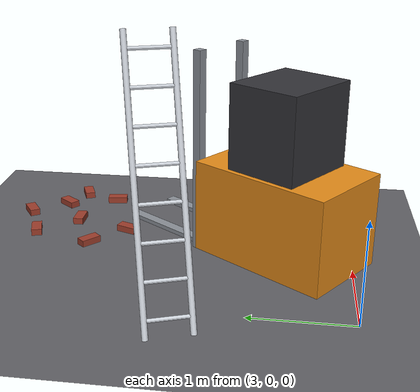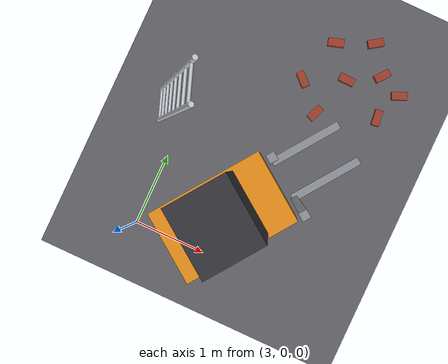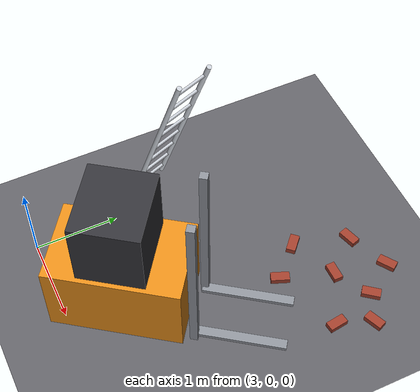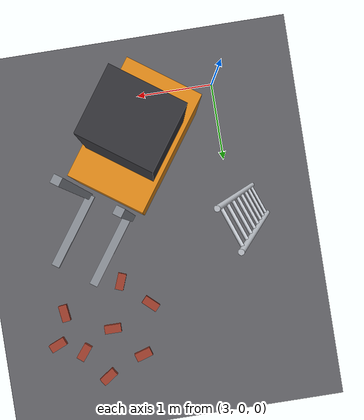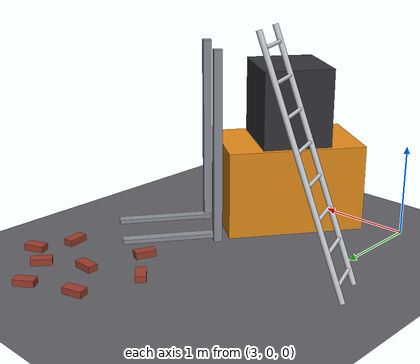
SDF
<sdf version="1.6">
 <world name="construction_lab_A">
  <model name="ground">
   <static>1</static>
   <link name="ground_link">
    <collision name="ground_col">
     <geometry><plane><normal>0 0 1</normal><size>60 60</size></plane></geometry>
     <surface><friction><ode><mu>0.9</mu><mu2>0.9</mu2></ode></friction></surface>
    </collision>
    <visual name="ground_vis">
     <geometry><plane><normal>0 0 1</normal><size>60 60</size></plane></geometry>
     <material><ambient>0.30 0.30 0.32 1</ambient><diffuse>0.38 0.38 0.40 1</diffuse></material>
    </visual>
   </link>
  </model>
  <model name="hazard_A1">
   <static>1</static>
   <link name="hA1_ladder_leaning_rail0">
    <pose>3.07926 1.55139 1.22558 0 0.34 0.35</pose>
    <gravity>0</gravity>
    <collision name="hA1_ladder_leaning_rail0_col">
     <geometry><cylinder><radius>0.028</radius><length>2.6</length></cylinder></geometry>
    </collision>
    <visual name="hA1_ladder_leaning_rail0_vis">
     <geometry><cylinder><radius>0.028</radius><length>2.6</length></cylinder></geometry>
     <material>
      <ambient>0.8 0.82 0.85 1</ambient>
      <diffuse>0.8 0.82 0.85 1</diffuse>
      <specular>0.1 0.1 0.1 1</specular>
     </material>
    </visual>
   </link>
   <link name="hA1_ladder_leaning_rail1">
    <pose>2.93524 1.94593 1.22558 0 0.34 0.35</pose>
    <gravity>0</gravity>
    <collision name="hA1_ladder_leaning_rail1_col">
     <geometry><cylinder><radius>0.028</radius><length>2.6</length></cylinder></geometry>
    </collision>
    <visual name="hA1_ladder_leaning_rail1_vis">
     <geometry><cylinder><radius>0.028</radius><length>2.6</length></cylinder></geometry>
     <material>
      <ambient>0.8 0.82 0.85 1</ambient>
      <diffuse>0.8 0.82 0.85 1</diffuse>
      <specular>0.1 0.1 0.1 1</specular>
     </material>
    </visual>
   </link>
   <link name="hA1_ladder_leaning_rung0">
    <pose>2.65091 1.61858 0.153198 0 1.5708 1.9208</pose>
    <gravity>0</gravity>
    <collision name="hA1_ladder_leaning_rung0_col">
     <geometry><cylinder><radius>0.018</radius><length>0.42</length></cylinder></geometry>
    </collision>
    <visual name="hA1_ladder_leaning_rung0_vis">
     <geometry><cylinder><radius>0.018</radius><length>0.42</length></cylinder></geometry>
     <material>
      <ambient>0.8 0.82 0.85 1</ambient>
      <diffuse>0.8 0.82 0.85 1</diffuse>
      <specular>0.1 0.1 0.1 1</specular>
     </material>
    </visual>
   </link>
   <link name="hA1_ladder_leaning_rung1">
    <pose>2.75272 1.65575 0.459593 0 1.5708 1.9208</pose>
    <gravity>0</gravity>
    <collision name="hA1_ladder_leaning_rung1_col">
     <geometry><cylinder><radius>0.018</radius><length>0.42</length></cylinder></geometry>
    </collision>
    <visual name="hA1_ladder_leaning_rung1_vis">
     <geometry><cylinder><radius>0.018</radius><length>0.42</length></cylinder></geometry>
     <material>
      <ambient>0.8 0.82 0.85 1</ambient>
      <diffuse>0.8 0.82 0.85 1</diffuse>
      <specular>0.1 0.1 0.1 1</specular>
     </material>
    </visual>
   </link>
   <link name="hA1_ladder_leaning_rung2">
    <pose>2.85453 1.69291 0.765988 0 1.5708 1.9208</pose>
    <gravity>0</gravity>
    <collision name="hA1_ladder_leaning_rung2_col">
     <geometry><cylinder><radius>0.018</radius><length>0.42</length></cylinder></geometry>
    </collision>
    <visual name="hA1_ladder_leaning_rung2_vis">
     <geometry><cylinder><radius>0.018</radius><length>0.42</length></cylinder></geometry>
     <material>
      <ambient>0.8 0.82 0.85 1</ambient>
      <diffuse>0.8 0.82 0.85 1</diffuse>
      <specular>0.1 0.1 0.1 1</specular>
     </material>
    </visual>
   </link>
   <link name="hA1_ladder_leaning_rung3">
    <pose>2.95634 1.73008 1.07238 0 1.5708 1.9208</pose>
    <gravity>0</gravity>
    <collision name="hA1_ladder_leaning_rung3_col">
     <geometry><cylinder><radius>0.018</radius><length>0.42</length></cylinder></geometry>
    </collision>
    <visual name="hA1_ladder_leaning_rung3_vis">
     <geometry><cylinder><radius>0.018</radius><length>0.42</length></cylinder></geometry>
     <material>
      <ambient>0.8 0.82 0.85 1</ambient>
      <diffuse>0.8 0.82 0.85 1</diffuse>
      <specular>0.1 0.1 0.1 1</specular>
     </material>
    </visual>
   </link>
   <link name="hA1_ladder_leaning_rung4">
    <pose>3.05816 1.76724 1.37878 0 1.5708 1.9208</pose>
    <gravity>0</gravity>
    <collision name="hA1_ladder_leaning_rung4_col">
     <geometry><cylinder><radius>0.018</radius><length>0.42</length></cylinder></geometry>
    </collision>
    <visual name="hA1_ladder_leaning_rung4_vis">
     <geometry><cylinder><radius>0.018</radius><length>0.42</length></cylinder></geometry>
     <material>
      <ambient>0.8 0.82 0.85 1</ambient>
      <diffuse>0.8 0.82 0.85 1</diffuse>
      <specular>0.1 0.1 0.1 1</specular>
     </material>
    </visual>
   </link>
   <link name="hA1_ladder_leaning_rung5">
    <pose>3.15997 1.8044 1.68517 0 1.5708 1.9208</pose>
    <gravity>0</gravity>
    <collision name="hA1_ladder_leaning_rung5_col">
     <geometry><cylinder><radius>0.018</radius><length>0.42</length></cylinder></geometry>
    </collision>
    <visual name="hA1_ladder_leaning_rung5_vis">
     <geometry><cylinder><radius>0.018</radius><length>0.42</length></cylinder></geometry>
     <material>
      <ambient>0.8 0.82 0.85 1</ambient>
      <diffuse>0.8 0.82 0.85 1</diffuse>
      <specular>0.1 0.1 0.1 1</specular>
     </material>
    </visual>
   </link>
   <link name="hA1_ladder_leaning_rung6">
    <pose>3.26178 1.84157 1.99157 0 1.5708 1.9208</pose>
    <gravity>0</gravity>
    <collision name="hA1_ladder_leaning_rung6_col">
     <geometry><cylinder><radius>0.018</radius><length>0.42</length></cylinder></geometry>
    </collision>
    <visual name="hA1_ladder_leaning_rung6_vis">
     <geometry><cylinder><radius>0.018</radius><length>0.42</length></cylinder></geometry>
     <material>
      <ambient>0.8 0.82 0.85 1</ambient>
      <diffuse>0.8 0.82 0.85 1</diffuse>
      <specular>0.1 0.1 0.1 1</specular>
     </material>
    </visual>
   </link>
   <link name="hA1_ladder_leaning_rung7">
    <pose>3.36359 1.87873 2.29796 0 1.5708 1.9208</pose>
    <gravity>0</gravity>
    <collision name="hA1_ladder_leaning_rung7_col">
     <geometry><cylinder><radius>0.018</radius><length>0.42</length></cylinder></geometry>
    </collision>
    <visual name="hA1_ladder_leaning_rung7_vis">
     <geometry><cylinder><radius>0.018</radius><length>0.42</length></cylinder></geometry>
     <material>
      <ambient>0.8 0.82 0.85 1</ambient>
      <diffuse>0.8 0.82 0.85 1</diffuse>
      <specular>0.1 0.1 0.1 1</specular>
     </material>
    </visual>
   </link>
   <link name="hA1_forklift_body">
    <pose>4.1 0.7 0.55 0 0 0.95</pose>
    <gravity>0</gravity>
    <collision name="hA1_forklift_body_col"><geometry><box><size>1.5 0.95 0.95</size></box></geometry></collision>
    <visual name="hA1_forklift_body_vis">
     <geometry><box><size>1.5 0.95 0.95</size></box></geometry>
     <material>
      <ambient>0.9 0.55 0.1 1</ambient>
      <diffuse>0.9 0.55 0.1 1</diffuse>
      <specular>0.1 0.1 0.1 1</specular>
     </material>
    </visual>
   </link>
   <link name="hA1_forklift_cab">
    <pose>4.1 0.7 1.45 0 0 0.95</pose>
    <gravity>0</gravity>
    <collision name="hA1_forklift_cab_col"><geometry><box><size>0.75 0.85 0.85</size></box></geometry></collision>
    <visual name="hA1_forklift_cab_vis">
     <geometry><box><size>0.75 0.85 0.85</size></box></geometry>
     <material>
      <ambient>0.2 0.2 0.22 1</ambient>
      <diffuse>0.2 0.2 0.22 1</diffuse>
      <specular>0.1 0.1 0.1 1</specular>
     </material>
    </visual>
   </link>
   <link name="hA1_forklift_mast0">
    <pose>4.85472 1.20526 1.05 0 0 0.95</pose>
    <gravity>0</gravity>
    <collision name="hA1_forklift_mast0_col">
     <geometry><box><size>0.09 0.09 2.1</size></box></geometry>
    </collision>
    <visual name="hA1_forklift_mast0_vis">
     <geometry><box><size>0.09 0.09 2.1</size></box></geometry>
     <material>
      <ambient>0.55 0.57 0.6 1</ambient>
      <diffuse>0.55 0.57 0.6 1</diffuse>
      <specular>0.1 0.1 0.1 1</specular>
     </material>
    </visual>
   </link>
   <link name="hA1_forklift_mast1">
    <pose>4.33414 1.57754 1.05 0 0 0.95</pose>
    <gravity>0</gravity>
    <collision name="hA1_forklift_mast1_col">
     <geometry><box><size>0.09 0.09 2.1</size></box></geometry>
    </collision>
    <visual name="hA1_forklift_mast1_vis">
     <geometry><box><size>0.09 0.09 2.1</size></box></geometry>
     <material>
      <ambient>0.55 0.57 0.6 1</ambient>
      <diffuse>0.55 0.57 0.6 1</diffuse>
      <specular>0.1 0.1 0.1 1</specular>
     </material>
    </visual>
   </link>
   <link name="hA1_forklift_fork0">
    <pose>5.11303 1.63524 0.06 0 0 0.95</pose>
    <gravity>0</gravity>
    <collision name="hA1_forklift_fork0_col">
     <geometry><box><size>1.05 0.11 0.045</size></box></geometry>
    </collision>
    <visual name="hA1_forklift_fork0_vis">
     <geometry><box><size>1.05 0.11 0.045</size></box></geometry>
     <material>
      <ambient>0.55 0.57 0.6 1</ambient>
      <diffuse>0.55 0.57 0.6 1</diffuse>
      <specular>0.1 0.1 0.1 1</specular>
     </material>
    </visual>
   </link>
   <link name="hA1_forklift_fork1">
    <pose>4.65752 1.96098 0.06 0 0 0.95</pose>
    <gravity>0</gravity>
    <collision name="hA1_forklift_fork1_col">
     <geometry><box><size>1.05 0.11 0.045</size></box></geometry>
    </collision>
    <visual name="hA1_forklift_fork1_vis">
     <geometry><box><size>1.05 0.11 0.045</size></box></geometry>
     <material>
      <ambient>0.55 0.57 0.6 1</ambient>
      <diffuse>0.55 0.57 0.6 1</diffuse>
      <specular>0.1 0.1 0.1 1</specular>
     </material>
    </visual>
   </link>
  </model>
  <model name="hazard_A2">
   <static>1</static>
   <link name="hA2_brick_scatter_b0">
    <pose>4.8 3 0.035 0 0 0</pose>
    <gravity>0</gravity>
    <collision name="hA2_brick_scatter_b0_col">
     <geometry><box><size>0.22 0.11 0.07</size></box></geometry>
    </collision>
    <visual name="hA2_brick_scatter_b0_vis">
     <geometry><box><size>0.22 0.11 0.07</size></box></geometry>
     <material>
      <ambient>0.62 0.24 0.17 1</ambient>
      <diffuse>0.62 0.24 0.17 1</diffuse>
      <specular>0.1 0.1 0.1 1</specular>
     </material>
    </visual>
   </link>
   <link name="hA2_brick_scatter_b1">
    <pose>5.22 3.25 0.035 0 0 0.9</pose>
    <gravity>0</gravity>
    <collision name="hA2_brick_scatter_b1_col">
     <geometry><box><size>0.22 0.11 0.07</size></box></geometry>
    </collision>
    <visual name="hA2_brick_scatter_b1_vis">
     <geometry><box><size>0.22 0.11 0.07</size></box></geometry>
     <material>
      <ambient>0.62 0.24 0.17 1</ambient>
      <diffuse>0.62 0.24 0.17 1</diffuse>
      <specular>0.1 0.1 0.1 1</specular>
     </material>
    </visual>
   </link>
   <link name="hA2_brick_scatter_b2">
    <pose>4.45 3.4 0.035 0 0 0.3</pose>
    <gravity>0</gravity>
    <collision name="hA2_brick_scatter_b2_col">
     <geometry><box><size>0.22 0.11 0.07</size></box></geometry>
    </collision>
    <visual name="hA2_brick_scatter_b2_vis">
     <geometry><box><size>0.22 0.11 0.07</size></box></geometry>
     <material>
      <ambient>0.62 0.24 0.17 1</ambient>
      <diffuse>0.62 0.24 0.17 1</diffuse>
      <specular>0.1 0.1 0.1 1</specular>
     </material>
    </visual>
   </link>
   <link name="hA2_brick_scatter_b3">
    <pose>5.4 2.7 0.035 0 0 1.7</pose>
    <gravity>0</gravity>
    <collision name="hA2_brick_scatter_b3_col">
     <geometry><box><size>0.22 0.11 0.07</size></box></geometry>
    </collision>
    <visual name="hA2_brick_scatter_b3_vis">
     <geometry><box><size>0.22 0.11 0.07</size></box></geometry>
     <material>
      <ambient>0.62 0.24 0.17 1</ambient>
      <diffuse>0.62 0.24 0.17 1</diffuse>
      <specular>0.1 0.1 0.1 1</specular>
     </material>
    </visual>
   </link>
   <link name="hA2_brick_scatter_b4">
    <pose>4.25 2.75 0.035 0 0 2.4</pose>
    <gravity>0</gravity>
    <collision name="hA2_brick_scatter_b4_col">
     <geometry><box><size>0.22 0.11 0.07</size></box></geometry>
    </collision>
    <visual name="hA2_brick_scatter_b4_vis">
     <geometry><box><size>0.22 0.11 0.07</size></box></geometry>
     <material>
      <ambient>0.62 0.24 0.17 1</ambient>
      <diffuse>0.62 0.24 0.17 1</diffuse>
      <specular>0.1 0.1 0.1 1</specular>
     </material>
    </visual>
   </link>
   <link name="hA2_brick_scatter_b5">
    <pose>4.95 3.62 0.035 0 0 0.6</pose>
    <gravity>0</gravity>
    <collision name="hA2_brick_scatter_b5_col">
     <geometry><box><size>0.22 0.11 0.07</size></box></geometry>
    </collision>
    <visual name="hA2_brick_scatter_b5_vis">
     <geometry><box><size>0.22 0.11 0.07</size></box></geometry>
     <material>
      <ambient>0.62 0.24 0.17 1</ambient>
      <diffuse>0.62 0.24 0.17 1</diffuse>
      <specular>0.1 0.1 0.1 1</specular>
     </material>
    </visual>
   </link>
   <link name="hA2_brick_scatter_b6">
    <pose>4.6 2.4 0.035 0 0 1.2</pose>
    <gravity>0</gravity>
    <collision name="hA2_brick_scatter_b6_col">
     <geometry><box><size>0.22 0.11 0.07</size></box></geometry>
    </collision>
    <visual name="hA2_brick_scatter_b6_vis">
     <geometry><box><size>0.22 0.11 0.07</size></box></geometry>
     <material>
      <ambient>0.62 0.24 0.17 1</ambient>
      <diffuse>0.62 0.24 0.17 1</diffuse>
      <specular>0.1 0.1 0.1 1</specular>
     </material>
    </visual>
   </link>
   <link name="hA2_brick_scatter_b7">
    <pose>5.55 3.1 0.035 0 0 0.4</pose>
    <gravity>0</gravity>
    <collision name="hA2_brick_scatter_b7_col">
     <geometry><box><size>0.22 0.11 0.07</size></box></geometry>
    </collision>
    <visual name="hA2_brick_scatter_b7_vis">
     <geometry><box><size>0.22 0.11 0.07</size></box></geometry>
     <material>
      <ambient>0.62 0.24 0.17 1</ambient>
      <diffuse>0.62 0.24 0.17 1</diffuse>
      <specular>0.1 0.1 0.1 1</specular>
     </material>
    </visual>
   </link>
  </model>
 </world>
</sdf>
